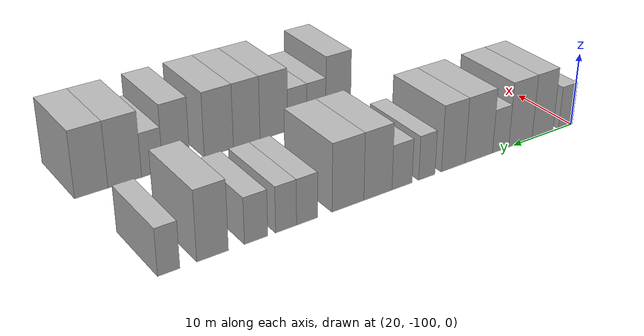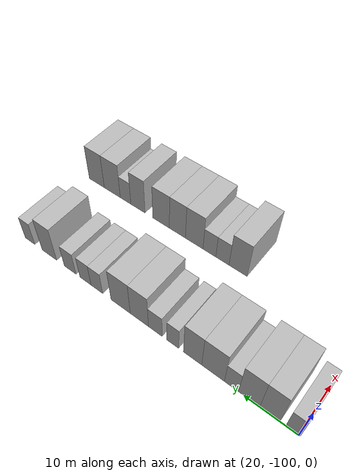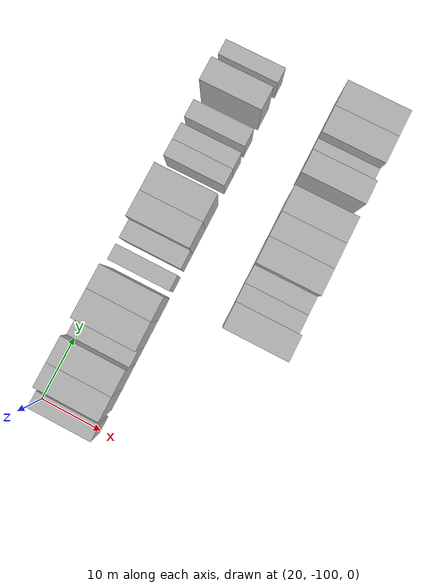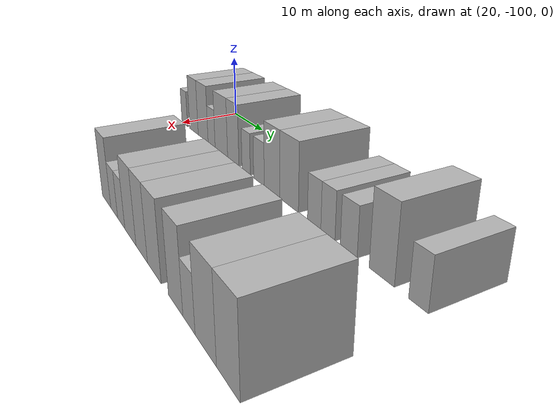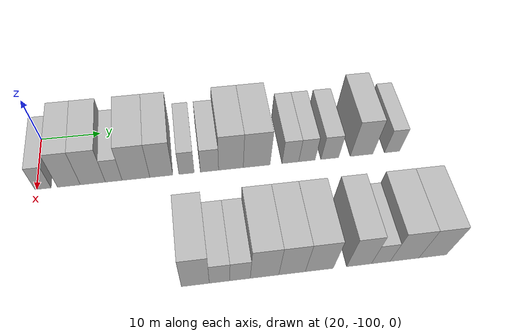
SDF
<sdf version="1.6">
 <world name="default">
  <model name="building_25">
   <static>1</static>
   <pose>25.0000 -98.9838 0 0.000000 0.000000 0.000000</pose>
   <link name="link">
    <pose>0 0 3.00 0 0 0</pose>
    <collision name="collision"><geometry><box><size>10.0000 2.5509 6.0000</size></box></geometry></collision>
    <visual name="visual">
     <cast_shadows>0</cast_shadows>
     <geometry><box><size>10.0000 2.5509 6.0000</size></box></geometry>
     <material>
      <script>
       <uri>model://HANNAS_wall/materials/scripts</uri>
       <uri>model://HANNAS_wall/materials/textures</uri>
       <name>vrc/HANNAS_wall</name>
      </script>
     </material>
    </visual>
   </link>
  </model>
  <model name="building_26">
   <static>1</static>
   <pose>25.0000 -94.8883 0 0.000000 0.000000 0.000000</pose>
   <link name="link">
    <pose>0 0 4.50 0 0 0</pose>
    <collision name="collision"><geometry><box><size>10.0000 3.6400 9.0000</size></box></geometry></collision>
    <visual name="visual">
     <cast_shadows>0</cast_shadows>
     <geometry><box><size>10.0000 3.6400 9.0000</size></box></geometry>
     <material>
      <script>
       <uri>model://HANNAS_wall/materials/scripts</uri>
       <uri>model://HANNAS_wall/materials/textures</uri>
       <name>vrc/HANNAS_wall</name>
      </script>
     </material>
    </visual>
   </link>
  </model>
  <model name="building_27">
   <static>1</static>
   <pose>25.0000 -91.0747 0 0.000000 0.000000 0.000000</pose>
   <link name="link">
    <pose>0 0 4.50 0 0 0</pose>
    <collision name="collision"><geometry><box><size>10.0000 3.9872 9.0000</size></box></geometry></collision>
    <visual name="visual">
     <cast_shadows>0</cast_shadows>
     <geometry><box><size>10.0000 3.9872 9.0000</size></box></geometry>
     <material>
      <script>
       <uri>model://HANNAS_wall/materials/scripts</uri>
       <uri>model://HANNAS_wall/materials/textures</uri>
       <name>vrc/HANNAS_wall</name>
      </script>
     </material>
    </visual>
   </link>
  </model>
  <model name="building_28">
   <static>1</static>
   <pose>25.0000 -87.7327 0 0.000000 0.000000 0.000000</pose>
   <link name="link">
    <pose>0 0 3.00 0 0 0</pose>
    <collision name="collision"><geometry><box><size>10.0000 2.6968 6.0000</size></box></geometry></collision>
    <visual name="visual">
     <cast_shadows>0</cast_shadows>
     <geometry><box><size>10.0000 2.6968 6.0000</size></box></geometry>
     <material>
      <script>
       <uri>model://HANNAS_wall/materials/scripts</uri>
       <uri>model://HANNAS_wall/materials/textures</uri>
       <name>vrc/HANNAS_wall</name>
      </script>
     </material>
    </visual>
   </link>
  </model>
  <model name="building_29">
   <static>1</static>
   <pose>25.0000 -84.1509 0 0.000000 0.000000 0.000000</pose>
   <link name="link">
    <pose>0 0 4.50 0 0 0</pose>
    <collision name="collision"><geometry><box><size>10.0000 4.4668 9.0000</size></box></geometry></collision>
    <visual name="visual">
     <cast_shadows>0</cast_shadows>
     <geometry><box><size>10.0000 4.4668 9.0000</size></box></geometry>
     <material>
      <script>
       <uri>model://HANNAS_wall/materials/scripts</uri>
       <uri>model://HANNAS_wall/materials/textures</uri>
       <name>vrc/HANNAS_wall</name>
      </script>
     </material>
    </visual>
   </link>
  </model>
  <model name="building_30">
   <static>1</static>
   <pose>25.0000 -80.0472 0 0.000000 0.000000 0.000000</pose>
   <link name="link">
    <pose>0 0 4.50 0 0 0</pose>
    <collision name="collision"><geometry><box><size>10.0000 3.7407 9.0000</size></box></geometry></collision>
    <visual name="visual">
     <cast_shadows>0</cast_shadows>
     <geometry><box><size>10.0000 3.7407 9.0000</size></box></geometry>
     <material>
      <script>
       <uri>model://HANNAS_wall/materials/scripts</uri>
       <uri>model://HANNAS_wall/materials/textures</uri>
       <name>vrc/HANNAS_wall</name>
      </script>
     </material>
    </visual>
   </link>
  </model>
  <model name="building_31">
   <static>1</static>
   <pose>25.0000 -75.9265 0 0.000000 0.000000 0.000000</pose>
   <link name="link">
    <pose>0 0 3.00 0 0 0</pose>
    <collision name="collision"><geometry><box><size>10.0000 2.5007 6.0000</size></box></geometry></collision>
    <visual name="visual">
     <cast_shadows>0</cast_shadows>
     <geometry><box><size>10.0000 2.5007 6.0000</size></box></geometry>
     <material>
      <script>
       <uri>model://HANNAS_wall/materials/scripts</uri>
       <uri>model://HANNAS_wall/materials/textures</uri>
       <name>vrc/HANNAS_wall</name>
      </script>
     </material>
    </visual>
   </link>
  </model>
  <model name="building_32">
   <static>1</static>
   <pose>25.0000 -72.1785 0 0.000000 0.000000 0.000000</pose>
   <link name="link">
    <pose>0 0 3.00 0 0 0</pose>
    <collision name="collision"><geometry><box><size>10.0000 2.9952 6.0000</size></box></geometry></collision>
    <visual name="visual">
     <cast_shadows>0</cast_shadows>
     <geometry><box><size>10.0000 2.9952 6.0000</size></box></geometry>
     <material>
      <script>
       <uri>model://HANNAS_wall/materials/scripts</uri>
       <uri>model://HANNAS_wall/materials/textures</uri>
       <name>vrc/HANNAS_wall</name>
      </script>
     </material>
    </visual>
   </link>
  </model>
  <model name="building_33">
   <static>1</static>
   <pose>25.0000 -68.6379 0 0.000000 0.000000 0.000000</pose>
   <link name="link">
    <pose>0 0 4.50 0 0 0</pose>
    <collision name="collision"><geometry><box><size>10.0000 4.0860 9.0000</size></box></geometry></collision>
    <visual name="visual">
     <cast_shadows>0</cast_shadows>
     <geometry><box><size>10.0000 4.0860 9.0000</size></box></geometry>
     <material>
      <script>
       <uri>model://HANNAS_wall/materials/scripts</uri>
       <uri>model://HANNAS_wall/materials/textures</uri>
       <name>vrc/HANNAS_wall</name>
      </script>
     </material>
    </visual>
   </link>
  </model>
  <model name="building_34">
   <static>1</static>
   <pose>25.0000 -64.3615 0 0.000000 0.000000 0.000000</pose>
   <link name="link">
    <pose>0 0 4.50 0 0 0</pose>
    <collision name="collision"><geometry><box><size>10.0000 4.4669 9.0000</size></box></geometry></collision>
    <visual name="visual">
     <cast_shadows>0</cast_shadows>
     <geometry><box><size>10.0000 4.4669 9.0000</size></box></geometry>
     <material>
      <script>
       <uri>model://HANNAS_wall/materials/scripts</uri>
       <uri>model://HANNAS_wall/materials/textures</uri>
       <name>vrc/HANNAS_wall</name>
      </script>
     </material>
    </visual>
   </link>
  </model>
  <model name="building_35">
   <static>1</static>
   <pose>25.0000 -58.7191 0 0.000000 0.000000 0.000000</pose>
   <link name="link">
    <pose>0 0 3.00 0 0 0</pose>
    <collision name="collision"><geometry><box><size>10.0000 2.8178 6.0000</size></box></geometry></collision>
    <visual name="visual">
     <cast_shadows>0</cast_shadows>
     <geometry><box><size>10.0000 2.8178 6.0000</size></box></geometry>
     <material>
      <script>
       <uri>model://HANNAS_wall/materials/scripts</uri>
       <uri>model://HANNAS_wall/materials/textures</uri>
       <name>vrc/HANNAS_wall</name>
      </script>
     </material>
    </visual>
   </link>
  </model>
  <model name="building_36">
   <static>1</static>
   <pose>25.0000 -55.9275 0 0.000000 0.000000 0.000000</pose>
   <link name="link">
    <pose>0 0 3.00 0 0 0</pose>
    <collision name="collision"><geometry><box><size>10.0000 2.7654 6.0000</size></box></geometry></collision>
    <visual name="visual">
     <cast_shadows>0</cast_shadows>
     <geometry><box><size>10.0000 2.7654 6.0000</size></box></geometry>
     <material>
      <script>
       <uri>model://HANNAS_wall/materials/scripts</uri>
       <uri>model://HANNAS_wall/materials/textures</uri>
       <name>vrc/HANNAS_wall</name>
      </script>
     </material>
    </visual>
   </link>
  </model>
  <model name="building_37">
   <static>1</static>
   <pose>25.0000 -52.0480 0 0.000000 0.000000 0.000000</pose>
   <link name="link">
    <pose>0 0 3.00 0 0 0</pose>
    <collision name="collision"><geometry><box><size>10.0000 2.9936 6.0000</size></box></geometry></collision>
    <visual name="visual">
     <cast_shadows>0</cast_shadows>
     <geometry><box><size>10.0000 2.9936 6.0000</size></box></geometry>
     <material>
      <script>
       <uri>model://HANNAS_wall/materials/scripts</uri>
       <uri>model://HANNAS_wall/materials/textures</uri>
       <name>vrc/HANNAS_wall</name>
      </script>
     </material>
    </visual>
   </link>
  </model>
  <model name="building_38">
   <static>1</static>
   <pose>25.0000 -46.6086 0 0.000000 0.000000 0.000000</pose>
   <link name="link">
    <pose>0 0 4.50 0 0 0</pose>
    <collision name="collision"><geometry><box><size>10.0000 3.8852 9.0000</size></box></geometry></collision>
    <visual name="visual">
     <cast_shadows>0</cast_shadows>
     <geometry><box><size>10.0000 3.8852 9.0000</size></box></geometry>
     <material>
      <script>
       <uri>model://HANNAS_wall/materials/scripts</uri>
       <uri>model://HANNAS_wall/materials/textures</uri>
       <name>vrc/HANNAS_wall</name>
      </script>
     </material>
    </visual>
   </link>
  </model>
  <model name="building_39">
   <static>1</static>
   <pose>25.0000 -41.3513 0 0.000000 0.000000 0.000000</pose>
   <link name="link">
    <pose>0 0 3.00 0 0 0</pose>
    <collision name="collision"><geometry><box><size>10.0000 2.6293 6.0000</size></box></geometry></collision>
    <visual name="visual">
     <cast_shadows>0</cast_shadows>
     <geometry><box><size>10.0000 2.6293 6.0000</size></box></geometry>
     <material>
      <script>
       <uri>model://HANNAS_wall/materials/scripts</uri>
       <uri>model://HANNAS_wall/materials/textures</uri>
       <name>vrc/HANNAS_wall</name>
      </script>
     </material>
    </visual>
   </link>
  </model>
  <model name="building_131">
   <static>1</static>
   <pose>44.0000 -76.2037 0 0.000000 0.000000 0.000000</pose>
   <link name="link">
    <pose>0 0 4.50 0 0 0</pose>
    <collision name="collision"><geometry><box><size>10.0000 3.9986 9.0000</size></box></geometry></collision>
    <visual name="visual">
     <cast_shadows>0</cast_shadows>
     <geometry><box><size>10.0000 3.9986 9.0000</size></box></geometry>
     <material>
      <script>
       <uri>model://HANNAS_wall/materials/scripts</uri>
       <uri>model://HANNAS_wall/materials/textures</uri>
       <name>vrc/HANNAS_wall</name>
      </script>
     </material>
    </visual>
   </link>
  </model>
  <model name="building_132">
   <static>1</static>
   <pose>44.0000 -72.7141 0 0.000000 0.000000 0.000000</pose>
   <link name="link">
    <pose>0 0 3.00 0 0 0</pose>
    <collision name="collision"><geometry><box><size>10.0000 2.9807 6.0000</size></box></geometry></collision>
    <visual name="visual">
     <cast_shadows>0</cast_shadows>
     <geometry><box><size>10.0000 2.9807 6.0000</size></box></geometry>
     <material>
      <script>
       <uri>model://HANNAS_wall/materials/scripts</uri>
       <uri>model://HANNAS_wall/materials/textures</uri>
       <name>vrc/HANNAS_wall</name>
      </script>
     </material>
    </visual>
   </link>
  </model>
  <model name="building_133">
   <static>1</static>
   <pose>44.0000 -69.7472 0 0.000000 0.000000 0.000000</pose>
   <link name="link">
    <pose>0 0 3.00 0 0 0</pose>
    <collision name="collision"><geometry><box><size>10.0000 2.9531 6.0000</size></box></geometry></collision>
    <visual name="visual">
     <cast_shadows>0</cast_shadows>
     <geometry><box><size>10.0000 2.9531 6.0000</size></box></geometry>
     <material>
      <script>
       <uri>model://HANNAS_wall/materials/scripts</uri>
       <uri>model://HANNAS_wall/materials/textures</uri>
       <name>vrc/HANNAS_wall</name>
      </script>
     </material>
    </visual>
   </link>
  </model>
  <model name="building_134">
   <static>1</static>
   <pose>44.0000 -66.1834 0 0.000000 0.000000 0.000000</pose>
   <link name="link">
    <pose>0 0 4.50 0 0 0</pose>
    <collision name="collision"><geometry><box><size>10.0000 4.1745 9.0000</size></box></geometry></collision>
    <visual name="visual">
     <cast_shadows>0</cast_shadows>
     <geometry><box><size>10.0000 4.1745 9.0000</size></box></geometry>
     <material>
      <script>
       <uri>model://HANNAS_wall/materials/scripts</uri>
       <uri>model://HANNAS_wall/materials/textures</uri>
       <name>vrc/HANNAS_wall</name>
      </script>
     </material>
    </visual>
   </link>
  </model>
  <model name="building_135">
   <static>1</static>
   <pose>44.0000 -62.1445 0 0.000000 0.000000 0.000000</pose>
   <link name="link">
    <pose>0 0 4.50 0 0 0</pose>
    <collision name="collision"><geometry><box><size>10.0000 3.9033 9.0000</size></box></geometry></collision>
    <visual name="visual">
     <cast_shadows>0</cast_shadows>
     <geometry><box><size>10.0000 3.9033 9.0000</size></box></geometry>
     <material>
      <script>
       <uri>model://HANNAS_wall/materials/scripts</uri>
       <uri>model://HANNAS_wall/materials/textures</uri>
       <name>vrc/HANNAS_wall</name>
      </script>
     </material>
    </visual>
   </link>
  </model>
  <model name="building_136">
   <static>1</static>
   <pose>44.0000 -58.1118 0 0.000000 0.000000 0.000000</pose>
   <link name="link">
    <pose>0 0 4.50 0 0 0</pose>
    <collision name="collision"><geometry><box><size>10.0000 4.1620 9.0000</size></box></geometry></collision>
    <visual name="visual">
     <cast_shadows>0</cast_shadows>
     <geometry><box><size>10.0000 4.1620 9.0000</size></box></geometry>
     <material>
      <script>
       <uri>model://HANNAS_wall/materials/scripts</uri>
       <uri>model://HANNAS_wall/materials/textures</uri>
       <name>vrc/HANNAS_wall</name>
      </script>
     </material>
    </visual>
   </link>
  </model>
  <model name="building_137">
   <static>1</static>
   <pose>44.0000 -52.1697 0 0.000000 0.000000 0.000000</pose>
   <link name="link">
    <pose>0 0 4.50 0 0 0</pose>
    <collision name="collision"><geometry><box><size>10.0000 3.7222 9.0000</size></box></geometry></collision>
    <visual name="visual">
     <cast_shadows>0</cast_shadows>
     <geometry><box><size>10.0000 3.7222 9.0000</size></box></geometry>
     <material>
      <script>
       <uri>model://HANNAS_wall/materials/scripts</uri>
       <uri>model://HANNAS_wall/materials/textures</uri>
       <name>vrc/HANNAS_wall</name>
      </script>
     </material>
    </visual>
   </link>
  </model>
  <model name="building_138">
   <static>1</static>
   <pose>44.0000 -48.8975 0 0.000000 0.000000 0.000000</pose>
   <link name="link">
    <pose>0 0 3.00 0 0 0</pose>
    <collision name="collision"><geometry><box><size>10.0000 2.8223 6.0000</size></box></geometry></collision>
    <visual name="visual">
     <cast_shadows>0</cast_shadows>
     <geometry><box><size>10.0000 2.8223 6.0000</size></box></geometry>
     <material>
      <script>
       <uri>model://HANNAS_wall/materials/scripts</uri>
       <uri>model://HANNAS_wall/materials/textures</uri>
       <name>vrc/HANNAS_wall</name>
      </script>
     </material>
    </visual>
   </link>
  </model>
  <model name="building_139">
   <static>1</static>
   <pose>44.0000 -45.2960 0 0.000000 0.000000 0.000000</pose>
   <link name="link">
    <pose>0 0 4.50 0 0 0</pose>
    <collision name="collision"><geometry><box><size>10.0000 4.3806 9.0000</size></box></geometry></collision>
    <visual name="visual">
     <cast_shadows>0</cast_shadows>
     <geometry><box><size>10.0000 4.3806 9.0000</size></box></geometry>
     <material>
      <script>
       <uri>model://HANNAS_wall/materials/scripts</uri>
       <uri>model://HANNAS_wall/materials/textures</uri>
       <name>vrc/HANNAS_wall</name>
      </script>
     </material>
    </visual>
   </link>
  </model>
  <model name="building_140">
   <static>1</static>
   <pose>44.0000 -40.9973 0 0.000000 0.000000 0.000000</pose>
   <link name="link">
    <pose>0 0 4.50 0 0 0</pose>
    <collision name="collision"><geometry><box><size>10.0000 4.2167 9.0000</size></box></geometry></collision>
    <visual name="visual">
     <cast_shadows>0</cast_shadows>
     <geometry><box><size>10.0000 4.2167 9.0000</size></box></geometry>
     <material>
      <script>
       <uri>model://HANNAS_wall/materials/scripts</uri>
       <uri>model://HANNAS_wall/materials/textures</uri>
       <name>vrc/HANNAS_wall</name>
      </script>
     </material>
    </visual>
   </link>
  </model>
 </world>
</sdf>
